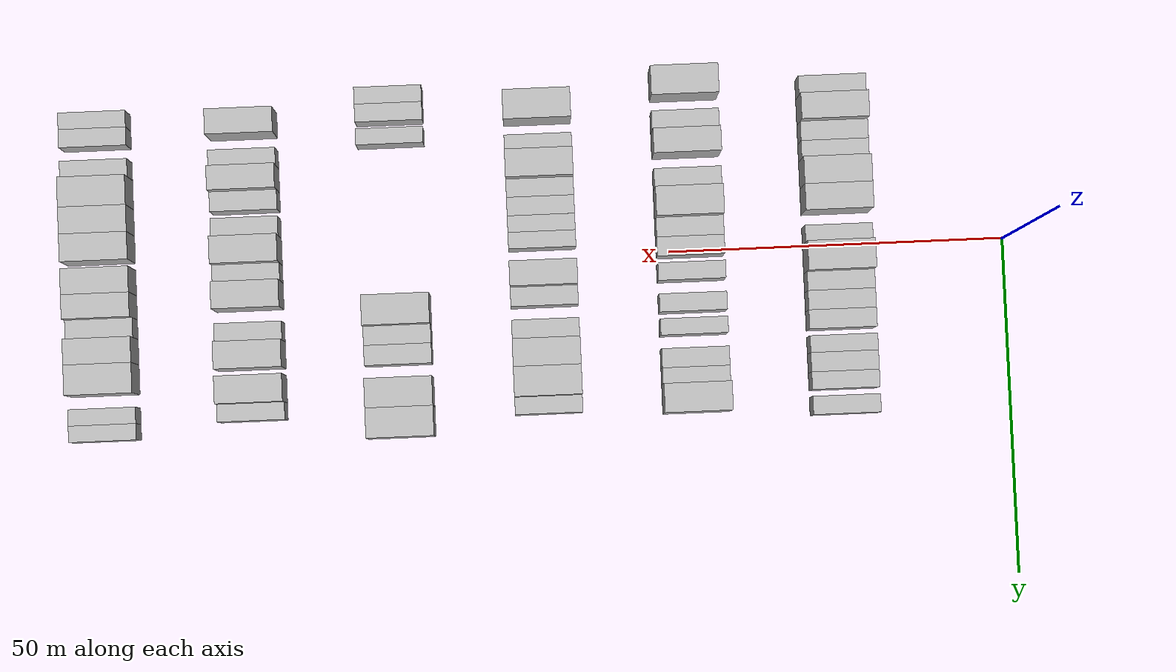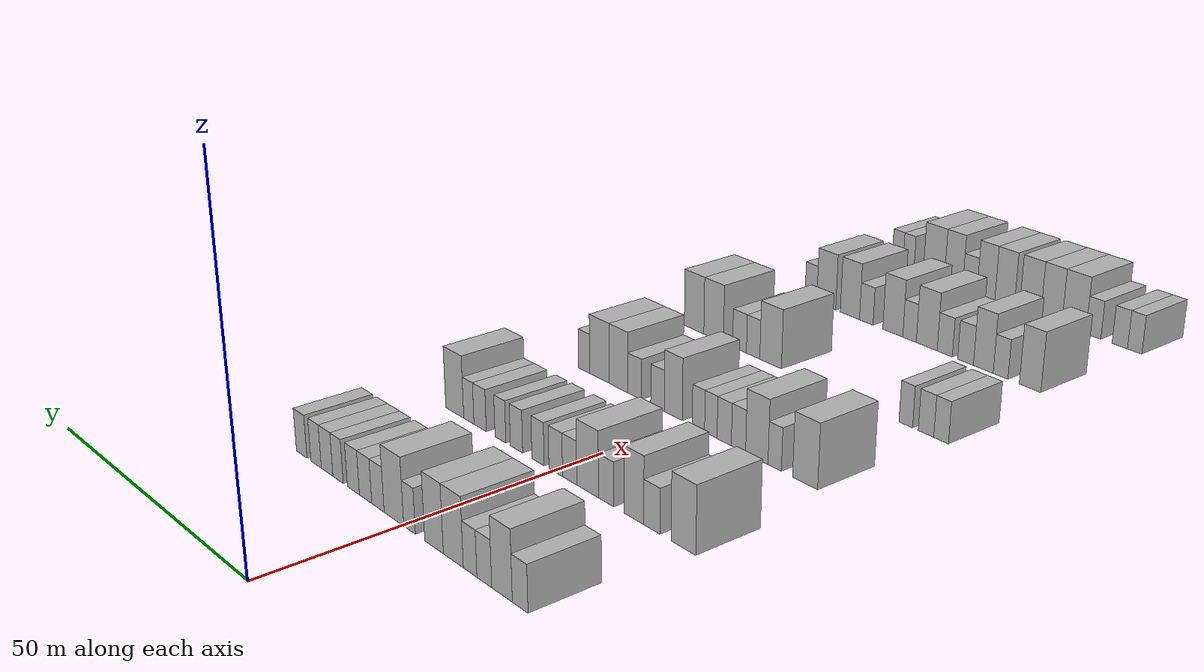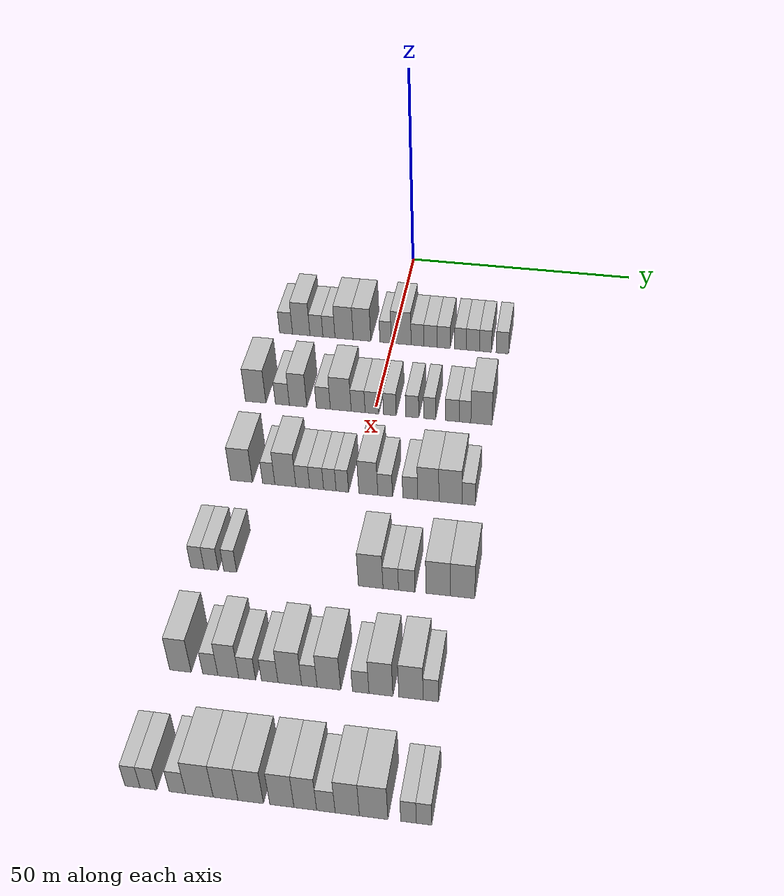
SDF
<sdf version="1.6">
 <world name="default">
  <model name="building_90">
   <static>1</static>
   <pose>25.0000 -23.5446 0 0.000000 0.000000 0.000000</pose>
   <link name="link">
    <pose>0 0 3.00 0 0 0</pose>
    <collision name="collision"><geometry><box><size>10.0000 2.8933 6.0000</size></box></geometry></collision>
    <visual name="visual">
     <cast_shadows>0</cast_shadows>
     <geometry><box><size>10.0000 2.8933 6.0000</size></box></geometry>
     <material>
      <script>
       <uri>model://HANNAS_wall/materials/scripts</uri>
       <uri>model://HANNAS_wall/materials/textures</uri>
       <name>vrc/HANNAS_wall</name>
      </script>
     </material>
    </visual>
   </link>
  </model>
  <model name="building_91">
   <static>1</static>
   <pose>25.0000 -20.1573 0 0.000000 0.000000 0.000000</pose>
   <link name="link">
    <pose>0 0 4.50 0 0 0</pose>
    <collision name="collision"><geometry><box><size>10.0000 3.8812 9.0000</size></box></geometry></collision>
    <visual name="visual">
     <cast_shadows>0</cast_shadows>
     <geometry><box><size>10.0000 3.8812 9.0000</size></box></geometry>
     <material>
      <script>
       <uri>model://HANNAS_wall/materials/scripts</uri>
       <uri>model://HANNAS_wall/materials/textures</uri>
       <name>vrc/HANNAS_wall</name>
      </script>
     </material>
    </visual>
   </link>
  </model>
  <model name="building_92">
   <static>1</static>
   <pose>25.0000 -16.7781 0 0.000000 0.000000 0.000000</pose>
   <link name="link">
    <pose>0 0 3.00 0 0 0</pose>
    <collision name="collision"><geometry><box><size>10.0000 2.8771 6.0000</size></box></geometry></collision>
    <visual name="visual">
     <cast_shadows>0</cast_shadows>
     <geometry><box><size>10.0000 2.8771 6.0000</size></box></geometry>
     <material>
      <script>
       <uri>model://HANNAS_wall/materials/scripts</uri>
       <uri>model://HANNAS_wall/materials/textures</uri>
       <name>vrc/HANNAS_wall</name>
      </script>
     </material>
    </visual>
   </link>
  </model>
  <model name="building_93">
   <static>1</static>
   <pose>25.0000 -13.9975 0 0.000000 0.000000 0.000000</pose>
   <link name="link">
    <pose>0 0 3.00 0 0 0</pose>
    <collision name="collision"><geometry><box><size>10.0000 2.6841 6.0000</size></box></geometry></collision>
    <visual name="visual">
     <cast_shadows>0</cast_shadows>
     <geometry><box><size>10.0000 2.6841 6.0000</size></box></geometry>
     <material>
      <script>
       <uri>model://HANNAS_wall/materials/scripts</uri>
       <uri>model://HANNAS_wall/materials/textures</uri>
       <name>vrc/HANNAS_wall</name>
      </script>
     </material>
    </visual>
   </link>
  </model>
  <model name="building_94">
   <static>1</static>
   <pose>25.0000 -10.6313 0 0.000000 0.000000 0.000000</pose>
   <link name="link">
    <pose>0 0 4.50 0 0 0</pose>
    <collision name="collision"><geometry><box><size>10.0000 4.0483 9.0000</size></box></geometry></collision>
    <visual name="visual">
     <cast_shadows>0</cast_shadows>
     <geometry><box><size>10.0000 4.0483 9.0000</size></box></geometry>
     <material>
      <script>
       <uri>model://HANNAS_wall/materials/scripts</uri>
       <uri>model://HANNAS_wall/materials/textures</uri>
       <name>vrc/HANNAS_wall</name>
      </script>
     </material>
    </visual>
   </link>
  </model>
  <model name="building_95">
   <static>1</static>
   <pose>25.0000 -6.6675 0 0.000000 0.000000 0.000000</pose>
   <link name="link">
    <pose>0 0 4.50 0 0 0</pose>
    <collision name="collision"><geometry><box><size>10.0000 3.8792 9.0000</size></box></geometry></collision>
    <visual name="visual">
     <cast_shadows>0</cast_shadows>
     <geometry><box><size>10.0000 3.8792 9.0000</size></box></geometry>
     <material>
      <script>
       <uri>model://HANNAS_wall/materials/scripts</uri>
       <uri>model://HANNAS_wall/materials/textures</uri>
       <name>vrc/HANNAS_wall</name>
      </script>
     </material>
    </visual>
   </link>
  </model>
  <model name="building_96">
   <static>1</static>
   <pose>25.0000 -1.4679 0 0.000000 0.000000 0.000000</pose>
   <link name="link">
    <pose>0 0 3.00 0 0 0</pose>
    <collision name="collision"><geometry><box><size>10.0000 2.5201 6.0000</size></box></geometry></collision>
    <visual name="visual">
     <cast_shadows>0</cast_shadows>
     <geometry><box><size>10.0000 2.5201 6.0000</size></box></geometry>
     <material>
      <script>
       <uri>model://HANNAS_wall/materials/scripts</uri>
       <uri>model://HANNAS_wall/materials/textures</uri>
       <name>vrc/HANNAS_wall</name>
      </script>
     </material>
    </visual>
   </link>
  </model>
  <model name="building_97">
   <static>1</static>
   <pose>25.0000 1.9667 0 0.000000 0.000000 0.000000</pose>
   <link name="link">
    <pose>0 0 4.50 0 0 0</pose>
    <collision name="collision"><geometry><box><size>10.0000 4.3492 9.0000</size></box></geometry></collision>
    <visual name="visual">
     <cast_shadows>0</cast_shadows>
     <geometry><box><size>10.0000 4.3492 9.0000</size></box></geometry>
     <material>
      <script>
       <uri>model://HANNAS_wall/materials/scripts</uri>
       <uri>model://HANNAS_wall/materials/textures</uri>
       <name>vrc/HANNAS_wall</name>
      </script>
     </material>
    </visual>
   </link>
  </model>
  <model name="building_98">
   <static>1</static>
   <pose>25.0000 5.5526 0 0.000000 0.000000 0.000000</pose>
   <link name="link">
    <pose>0 0 3.00 0 0 0</pose>
    <collision name="collision"><geometry><box><size>10.0000 2.8225 6.0000</size></box></geometry></collision>
    <visual name="visual">
     <cast_shadows>0</cast_shadows>
     <geometry><box><size>10.0000 2.8225 6.0000</size></box></geometry>
     <material>
      <script>
       <uri>model://HANNAS_wall/materials/scripts</uri>
       <uri>model://HANNAS_wall/materials/textures</uri>
       <name>vrc/HANNAS_wall</name>
      </script>
     </material>
    </visual>
   </link>
  </model>
  <model name="building_99">
   <static>1</static>
   <pose>25.0000 8.3953 0 0.000000 0.000000 0.000000</pose>
   <link name="link">
    <pose>0 0 3.00 0 0 0</pose>
    <collision name="collision"><geometry><box><size>10.0000 2.8630 6.0000</size></box></geometry></collision>
    <visual name="visual">
     <cast_shadows>0</cast_shadows>
     <geometry><box><size>10.0000 2.8630 6.0000</size></box></geometry>
     <material>
      <script>
       <uri>model://HANNAS_wall/materials/scripts</uri>
       <uri>model://HANNAS_wall/materials/textures</uri>
       <name>vrc/HANNAS_wall</name>
      </script>
     </material>
    </visual>
   </link>
  </model>
  <model name="building_100">
   <static>1</static>
   <pose>25.0000 11.2444 0 0.000000 0.000000 0.000000</pose>
   <link name="link">
    <pose>0 0 3.00 0 0 0</pose>
    <collision name="collision"><geometry><box><size>10.0000 2.8353 6.0000</size></box></geometry></collision>
    <visual name="visual">
     <cast_shadows>0</cast_shadows>
     <geometry><box><size>10.0000 2.8353 6.0000</size></box></geometry>
     <material>
      <script>
       <uri>model://HANNAS_wall/materials/scripts</uri>
       <uri>model://HANNAS_wall/materials/textures</uri>
       <name>vrc/HANNAS_wall</name>
      </script>
     </material>
    </visual>
   </link>
  </model>
  <model name="building_101">
   <static>1</static>
   <pose>25.0000 14.9084 0 0.000000 0.000000 0.000000</pose>
   <link name="link">
    <pose>0 0 3.00 0 0 0</pose>
    <collision name="collision"><geometry><box><size>10.0000 2.4927 6.0000</size></box></geometry></collision>
    <visual name="visual">
     <cast_shadows>0</cast_shadows>
     <geometry><box><size>10.0000 2.4927 6.0000</size></box></geometry>
     <material>
      <script>
       <uri>model://HANNAS_wall/materials/scripts</uri>
       <uri>model://HANNAS_wall/materials/textures</uri>
       <name>vrc/HANNAS_wall</name>
      </script>
     </material>
    </visual>
   </link>
  </model>
  <model name="building_102">
   <static>1</static>
   <pose>25.0000 17.5866 0 0.000000 0.000000 0.000000</pose>
   <link name="link">
    <pose>0 0 3.00 0 0 0</pose>
    <collision name="collision"><geometry><box><size>10.0000 2.8636 6.0000</size></box></geometry></collision>
    <visual name="visual">
     <cast_shadows>0</cast_shadows>
     <geometry><box><size>10.0000 2.8636 6.0000</size></box></geometry>
     <material>
      <script>
       <uri>model://HANNAS_wall/materials/scripts</uri>
       <uri>model://HANNAS_wall/materials/textures</uri>
       <name>vrc/HANNAS_wall</name>
      </script>
     </material>
    </visual>
   </link>
  </model>
  <model name="building_103">
   <static>1</static>
   <pose>25.0000 20.3215 0 0.000000 0.000000 0.000000</pose>
   <link name="link">
    <pose>0 0 3.00 0 0 0</pose>
    <collision name="collision"><geometry><box><size>10.0000 2.6062 6.0000</size></box></geometry></collision>
    <visual name="visual">
     <cast_shadows>0</cast_shadows>
     <geometry><box><size>10.0000 2.6062 6.0000</size></box></geometry>
     <material>
      <script>
       <uri>model://HANNAS_wall/materials/scripts</uri>
       <uri>model://HANNAS_wall/materials/textures</uri>
       <name>vrc/HANNAS_wall</name>
      </script>
     </material>
    </visual>
   </link>
  </model>
  <model name="building_104">
   <static>1</static>
   <pose>25.0000 23.9805 0 0.000000 0.000000 0.000000</pose>
   <link name="link">
    <pose>0 0 3.00 0 0 0</pose>
    <collision name="collision"><geometry><box><size>10.0000 2.7118 6.0000</size></box></geometry></collision>
    <visual name="visual">
     <cast_shadows>0</cast_shadows>
     <geometry><box><size>10.0000 2.7118 6.0000</size></box></geometry>
     <material>
      <script>
       <uri>model://HANNAS_wall/materials/scripts</uri>
       <uri>model://HANNAS_wall/materials/textures</uri>
       <name>vrc/HANNAS_wall</name>
      </script>
     </material>
    </visual>
   </link>
  </model>
  <model name="building_278">
   <static>1</static>
   <pose>47.0000 -24.8660 0 0.000000 0.000000 0.000000</pose>
   <link name="link">
    <pose>0 0 4.50 0 0 0</pose>
    <collision name="collision"><geometry><box><size>10.0000 4.3308 9.0000</size></box></geometry></collision>
    <visual name="visual">
     <cast_shadows>0</cast_shadows>
     <geometry><box><size>10.0000 4.3308 9.0000</size></box></geometry>
     <material>
      <script>
       <uri>model://HANNAS_wall/materials/scripts</uri>
       <uri>model://HANNAS_wall/materials/textures</uri>
       <name>vrc/HANNAS_wall</name>
      </script>
     </material>
    </visual>
   </link>
  </model>
  <model name="building_279">
   <static>1</static>
   <pose>47.0000 -19.2236 0 0.000000 0.000000 0.000000</pose>
   <link name="link">
    <pose>0 0 3.00 0 0 0</pose>
    <collision name="collision"><geometry><box><size>10.0000 2.9540 6.0000</size></box></geometry></collision>
    <visual name="visual">
     <cast_shadows>0</cast_shadows>
     <geometry><box><size>10.0000 2.9540 6.0000</size></box></geometry>
     <material>
      <script>
       <uri>model://HANNAS_wall/materials/scripts</uri>
       <uri>model://HANNAS_wall/materials/textures</uri>
       <name>vrc/HANNAS_wall</name>
      </script>
     </material>
    </visual>
   </link>
  </model>
  <model name="building_280">
   <static>1</static>
   <pose>47.0000 -15.9154 0 0.000000 0.000000 0.000000</pose>
   <link name="link">
    <pose>0 0 4.50 0 0 0</pose>
    <collision name="collision"><geometry><box><size>10.0000 3.6624 9.0000</size></box></geometry></collision>
    <visual name="visual">
     <cast_shadows>0</cast_shadows>
     <geometry><box><size>10.0000 3.6624 9.0000</size></box></geometry>
     <material>
      <script>
       <uri>model://HANNAS_wall/materials/scripts</uri>
       <uri>model://HANNAS_wall/materials/textures</uri>
       <name>vrc/HANNAS_wall</name>
      </script>
     </material>
    </visual>
   </link>
  </model>
  <model name="building_281">
   <static>1</static>
   <pose>47.0000 -10.6184 0 0.000000 0.000000 0.000000</pose>
   <link name="link">
    <pose>0 0 3.00 0 0 0</pose>
    <collision name="collision"><geometry><box><size>10.0000 2.9316 6.0000</size></box></geometry></collision>
    <visual name="visual">
     <cast_shadows>0</cast_shadows>
     <geometry><box><size>10.0000 2.9316 6.0000</size></box></geometry>
     <material>
      <script>
       <uri>model://HANNAS_wall/materials/scripts</uri>
       <uri>model://HANNAS_wall/materials/textures</uri>
       <name>vrc/HANNAS_wall</name>
      </script>
     </material>
    </visual>
   </link>
  </model>
  <model name="building_282">
   <static>1</static>
   <pose>47.0000 -6.9768 0 0.000000 0.000000 0.000000</pose>
   <link name="link">
    <pose>0 0 4.50 0 0 0</pose>
    <collision name="collision"><geometry><box><size>10.0000 4.3516 9.0000</size></box></geometry></collision>
    <visual name="visual">
     <cast_shadows>0</cast_shadows>
     <geometry><box><size>10.0000 4.3516 9.0000</size></box></geometry>
     <material>
      <script>
       <uri>model://HANNAS_wall/materials/scripts</uri>
       <uri>model://HANNAS_wall/materials/textures</uri>
       <name>vrc/HANNAS_wall</name>
      </script>
     </material>
    </visual>
   </link>
  </model>
  <model name="building_283">
   <static>1</static>
   <pose>47.0000 -3.3523 0 0.000000 0.000000 0.000000</pose>
   <link name="link">
    <pose>0 0 3.00 0 0 0</pose>
    <collision name="collision"><geometry><box><size>10.0000 2.8975 6.0000</size></box></geometry></collision>
    <visual name="visual">
     <cast_shadows>0</cast_shadows>
     <geometry><box><size>10.0000 2.8975 6.0000</size></box></geometry>
     <material>
      <script>
       <uri>model://HANNAS_wall/materials/scripts</uri>
       <uri>model://HANNAS_wall/materials/textures</uri>
       <name>vrc/HANNAS_wall</name>
      </script>
     </material>
    </visual>
   </link>
  </model>
  <model name="building_284">
   <static>1</static>
   <pose>47.0000 -0.4868 0 0.000000 0.000000 0.000000</pose>
   <link name="link">
    <pose>0 0 3.00 0 0 0</pose>
    <collision name="collision"><geometry><box><size>10.0000 2.8335 6.0000</size></box></geometry></collision>
    <visual name="visual">
     <cast_shadows>0</cast_shadows>
     <geometry><box><size>10.0000 2.8335 6.0000</size></box></geometry>
     <material>
      <script>
       <uri>model://HANNAS_wall/materials/scripts</uri>
       <uri>model://HANNAS_wall/materials/textures</uri>
       <name>vrc/HANNAS_wall</name>
      </script>
     </material>
    </visual>
   </link>
  </model>
  <model name="building_285">
   <static>1</static>
   <pose>47.0000 3.2384 0 0.000000 0.000000 0.000000</pose>
   <link name="link">
    <pose>0 0 3.00 0 0 0</pose>
    <collision name="collision"><geometry><box><size>10.0000 2.6170 6.0000</size></box></geometry></collision>
    <visual name="visual">
     <cast_shadows>0</cast_shadows>
     <geometry><box><size>10.0000 2.6170 6.0000</size></box></geometry>
     <material>
      <script>
       <uri>model://HANNAS_wall/materials/scripts</uri>
       <uri>model://HANNAS_wall/materials/textures</uri>
       <name>vrc/HANNAS_wall</name>
      </script>
     </material>
    </visual>
   </link>
  </model>
  <model name="building_286">
   <static>1</static>
   <pose>47.0000 7.8902 0 0.000000 0.000000 0.000000</pose>
   <link name="link">
    <pose>0 0 3.00 0 0 0</pose>
    <collision name="collision"><geometry><box><size>10.0000 2.6865 6.0000</size></box></geometry></collision>
    <visual name="visual">
     <cast_shadows>0</cast_shadows>
     <geometry><box><size>10.0000 2.6865 6.0000</size></box></geometry>
     <material>
      <script>
       <uri>model://HANNAS_wall/materials/scripts</uri>
       <uri>model://HANNAS_wall/materials/textures</uri>
       <name>vrc/HANNAS_wall</name>
      </script>
     </material>
    </visual>
   </link>
  </model>
  <model name="building_287">
   <static>1</static>
   <pose>47.0000 11.4489 0 0.000000 0.000000 0.000000</pose>
   <link name="link">
    <pose>0 0 3.00 0 0 0</pose>
    <collision name="collision"><geometry><box><size>10.0000 2.4309 6.0000</size></box></geometry></collision>
    <visual name="visual">
     <cast_shadows>0</cast_shadows>
     <geometry><box><size>10.0000 2.4309 6.0000</size></box></geometry>
     <material>
      <script>
       <uri>model://HANNAS_wall/materials/scripts</uri>
       <uri>model://HANNAS_wall/materials/textures</uri>
       <name>vrc/HANNAS_wall</name>
      </script>
     </material>
    </visual>
   </link>
  </model>
  <model name="building_288">
   <static>1</static>
   <pose>47.0000 16.0870 0 0.000000 0.000000 0.000000</pose>
   <link name="link">
    <pose>0 0 3.00 0 0 0</pose>
    <collision name="collision"><geometry><box><size>10.0000 2.8452 6.0000</size></box></geometry></collision>
    <visual name="visual">
     <cast_shadows>0</cast_shadows>
     <geometry><box><size>10.0000 2.8452 6.0000</size></box></geometry>
     <material>
      <script>
       <uri>model://HANNAS_wall/materials/scripts</uri>
       <uri>model://HANNAS_wall/materials/textures</uri>
       <name>vrc/HANNAS_wall</name>
      </script>
     </material>
    </visual>
   </link>
  </model>
  <model name="building_289">
   <static>1</static>
   <pose>47.0000 18.7150 0 0.000000 0.000000 0.000000</pose>
   <link name="link">
    <pose>0 0 3.00 0 0 0</pose>
    <collision name="collision"><geometry><box><size>10.0000 2.4107 6.0000</size></box></geometry></collision>
    <visual name="visual">
     <cast_shadows>0</cast_shadows>
     <geometry><box><size>10.0000 2.4107 6.0000</size></box></geometry>
     <material>
      <script>
       <uri>model://HANNAS_wall/materials/scripts</uri>
       <uri>model://HANNAS_wall/materials/textures</uri>
       <name>vrc/HANNAS_wall</name>
      </script>
     </material>
    </visual>
   </link>
  </model>
  <model name="building_290">
   <static>1</static>
   <pose>47.0000 22.0694 0 0.000000 0.000000 0.000000</pose>
   <link name="link">
    <pose>0 0 4.50 0 0 0</pose>
    <collision name="collision"><geometry><box><size>10.0000 4.2982 9.0000</size></box></geometry></collision>
    <visual name="visual">
     <cast_shadows>0</cast_shadows>
     <geometry><box><size>10.0000 4.2982 9.0000</size></box></geometry>
     <material>
      <script>
       <uri>model://HANNAS_wall/materials/scripts</uri>
       <uri>model://HANNAS_wall/materials/textures</uri>
       <name>vrc/HANNAS_wall</name>
      </script>
     </material>
    </visual>
   </link>
  </model>
  <model name="building_460">
   <static>1</static>
   <pose>69.0000 -22.1935 0 0.000000 0.000000 0.000000</pose>
   <link name="link">
    <pose>0 0 4.50 0 0 0</pose>
    <collision name="collision"><geometry><box><size>10.0000 4.3882 9.0000</size></box></geometry></collision>
    <visual name="visual">
     <cast_shadows>0</cast_shadows>
     <geometry><box><size>10.0000 4.3882 9.0000</size></box></geometry>
     <material>
      <script>
       <uri>model://HANNAS_wall/materials/scripts</uri>
       <uri>model://HANNAS_wall/materials/textures</uri>
       <name>vrc/HANNAS_wall</name>
      </script>
     </material>
    </visual>
   </link>
  </model>
  <model name="building_461">
   <static>1</static>
   <pose>69.0000 -16.7831 0 0.000000 0.000000 0.000000</pose>
   <link name="link">
    <pose>0 0 3.00 0 0 0</pose>
    <collision name="collision"><geometry><box><size>10.0000 2.4325 6.0000</size></box></geometry></collision>
    <visual name="visual">
     <cast_shadows>0</cast_shadows>
     <geometry><box><size>10.0000 2.4325 6.0000</size></box></geometry>
     <material>
      <script>
       <uri>model://HANNAS_wall/materials/scripts</uri>
       <uri>model://HANNAS_wall/materials/textures</uri>
       <name>vrc/HANNAS_wall</name>
      </script>
     </material>
    </visual>
   </link>
  </model>
  <model name="building_462">
   <static>1</static>
   <pose>69.0000 -13.4938 0 0.000000 0.000000 0.000000</pose>
   <link name="link">
    <pose>0 0 4.50 0 0 0</pose>
    <collision name="collision"><geometry><box><size>10.0000 4.1462 9.0000</size></box></geometry></collision>
    <visual name="visual">
     <cast_shadows>0</cast_shadows>
     <geometry><box><size>10.0000 4.1462 9.0000</size></box></geometry>
     <material>
      <script>
       <uri>model://HANNAS_wall/materials/scripts</uri>
       <uri>model://HANNAS_wall/materials/textures</uri>
       <name>vrc/HANNAS_wall</name>
      </script>
     </material>
    </visual>
   </link>
  </model>
  <model name="building_463">
   <static>1</static>
   <pose>69.0000 -10.0614 0 0.000000 0.000000 0.000000</pose>
   <link name="link">
    <pose>0 0 3.00 0 0 0</pose>
    <collision name="collision"><geometry><box><size>10.0000 2.7187 6.0000</size></box></geometry></collision>
    <visual name="visual">
     <cast_shadows>0</cast_shadows>
     <geometry><box><size>10.0000 2.7187 6.0000</size></box></geometry>
     <material>
      <script>
       <uri>model://HANNAS_wall/materials/scripts</uri>
       <uri>model://HANNAS_wall/materials/textures</uri>
       <name>vrc/HANNAS_wall</name>
      </script>
     </material>
    </visual>
   </link>
  </model>
  <model name="building_464">
   <static>1</static>
   <pose>69.0000 -7.3250 0 0.000000 0.000000 0.000000</pose>
   <link name="link">
    <pose>0 0 3.00 0 0 0</pose>
    <collision name="collision"><geometry><box><size>10.0000 2.7540 6.0000</size></box></geometry></collision>
    <visual name="visual">
     <cast_shadows>0</cast_shadows>
     <geometry><box><size>10.0000 2.7540 6.0000</size></box></geometry>
     <material>
      <script>
       <uri>model://HANNAS_wall/materials/scripts</uri>
       <uri>model://HANNAS_wall/materials/textures</uri>
       <name>vrc/HANNAS_wall</name>
      </script>
     </material>
    </visual>
   </link>
  </model>
  <model name="building_465">
   <static>1</static>
   <pose>69.0000 -4.7205 0 0.000000 0.000000 0.000000</pose>
   <link name="link">
    <pose>0 0 3.00 0 0 0</pose>
    <collision name="collision"><geometry><box><size>10.0000 2.4548 6.0000</size></box></geometry></collision>
    <visual name="visual">
     <cast_shadows>0</cast_shadows>
     <geometry><box><size>10.0000 2.4548 6.0000</size></box></geometry>
     <material>
      <script>
       <uri>model://HANNAS_wall/materials/scripts</uri>
       <uri>model://HANNAS_wall/materials/textures</uri>
       <name>vrc/HANNAS_wall</name>
      </script>
     </material>
    </visual>
   </link>
  </model>
  <model name="building_466">
   <static>1</static>
   <pose>69.0000 -2.2647 0 0.000000 0.000000 0.000000</pose>
   <link name="link">
    <pose>0 0 3.00 0 0 0</pose>
    <collision name="collision"><geometry><box><size>10.0000 2.4569 6.0000</size></box></geometry></collision>
    <visual name="visual">
     <cast_shadows>0</cast_shadows>
     <geometry><box><size>10.0000 2.4569 6.0000</size></box></geometry>
     <material>
      <script>
       <uri>model://HANNAS_wall/materials/scripts</uri>
       <uri>model://HANNAS_wall/materials/textures</uri>
       <name>vrc/HANNAS_wall</name>
      </script>
     </material>
    </visual>
   </link>
  </model>
  <model name="building_467">
   <static>1</static>
   <pose>69.0000 2.8188 0 0.000000 0.000000 0.000000</pose>
   <link name="link">
    <pose>0 0 4.50 0 0 0</pose>
    <collision name="collision"><geometry><box><size>10.0000 3.7100 9.0000</size></box></geometry></collision>
    <visual name="visual">
     <cast_shadows>0</cast_shadows>
     <geometry><box><size>10.0000 3.7100 9.0000</size></box></geometry>
     <material>
      <script>
       <uri>model://HANNAS_wall/materials/scripts</uri>
       <uri>model://HANNAS_wall/materials/textures</uri>
       <name>vrc/HANNAS_wall</name>
      </script>
     </material>
    </visual>
   </link>
  </model>
  <model name="building_468">
   <static>1</static>
   <pose>69.0000 6.0997 0 0.000000 0.000000 0.000000</pose>
   <link name="link">
    <pose>0 0 3.00 0 0 0</pose>
    <collision name="collision"><geometry><box><size>10.0000 2.8517 6.0000</size></box></geometry></collision>
    <visual name="visual">
     <cast_shadows>0</cast_shadows>
     <geometry><box><size>10.0000 2.8517 6.0000</size></box></geometry>
     <material>
      <script>
       <uri>model://HANNAS_wall/materials/scripts</uri>
       <uri>model://HANNAS_wall/materials/textures</uri>
       <name>vrc/HANNAS_wall</name>
      </script>
     </material>
    </visual>
   </link>
  </model>
  <model name="building_469">
   <static>1</static>
   <pose>69.0000 10.9726 0 0.000000 0.000000 0.000000</pose>
   <link name="link">
    <pose>0 0 3.00 0 0 0</pose>
    <collision name="collision"><geometry><box><size>10.0000 2.8942 6.0000</size></box></geometry></collision>
    <visual name="visual">
     <cast_shadows>0</cast_shadows>
     <geometry><box><size>10.0000 2.8942 6.0000</size></box></geometry>
     <material>
      <script>
       <uri>model://HANNAS_wall/materials/scripts</uri>
       <uri>model://HANNAS_wall/materials/textures</uri>
       <name>vrc/HANNAS_wall</name>
      </script>
     </material>
    </visual>
   </link>
  </model>
  <model name="building_470">
   <static>1</static>
   <pose>69.0000 14.4703 0 0.000000 0.000000 0.000000</pose>
   <link name="link">
    <pose>0 0 4.50 0 0 0</pose>
    <collision name="collision"><geometry><box><size>10.0000 4.1012 9.0000</size></box></geometry></collision>
    <visual name="visual">
     <cast_shadows>0</cast_shadows>
     <geometry><box><size>10.0000 4.1012 9.0000</size></box></geometry>
     <material>
      <script>
       <uri>model://HANNAS_wall/materials/scripts</uri>
       <uri>model://HANNAS_wall/materials/textures</uri>
       <name>vrc/HANNAS_wall</name>
      </script>
     </material>
    </visual>
   </link>
  </model>
  <model name="building_471">
   <static>1</static>
   <pose>69.0000 18.7322 0 0.000000 0.000000 0.000000</pose>
   <link name="link">
    <pose>0 0 4.50 0 0 0</pose>
    <collision name="collision"><geometry><box><size>10.0000 4.4226 9.0000</size></box></geometry></collision>
    <visual name="visual">
     <cast_shadows>0</cast_shadows>
     <geometry><box><size>10.0000 4.4226 9.0000</size></box></geometry>
     <material>
      <script>
       <uri>model://HANNAS_wall/materials/scripts</uri>
       <uri>model://HANNAS_wall/materials/textures</uri>
       <name>vrc/HANNAS_wall</name>
      </script>
     </material>
    </visual>
   </link>
  </model>
  <model name="building_472">
   <static>1</static>
   <pose>69.0000 22.2310 0 0.000000 0.000000 0.000000</pose>
   <link name="link">
    <pose>0 0 3.00 0 0 0</pose>
    <collision name="collision"><geometry><box><size>10.0000 2.5750 6.0000</size></box></geometry></collision>
    <visual name="visual">
     <cast_shadows>0</cast_shadows>
     <geometry><box><size>10.0000 2.5750 6.0000</size></box></geometry>
     <material>
      <script>
       <uri>model://HANNAS_wall/materials/scripts</uri>
       <uri>model://HANNAS_wall/materials/textures</uri>
       <name>vrc/HANNAS_wall</name>
      </script>
     </material>
    </visual>
   </link>
  </model>
  <model name="building_650">
   <static>1</static>
   <pose>91.0000 -24.7617 0 0.000000 0.000000 0.000000</pose>
   <link name="link">
    <pose>0 0 3.00 0 0 0</pose>
    <collision name="collision"><geometry><box><size>10.0000 2.5001 6.0000</size></box></geometry></collision>
    <visual name="visual">
     <cast_shadows>0</cast_shadows>
     <geometry><box><size>10.0000 2.5001 6.0000</size></box></geometry>
     <material>
      <script>
       <uri>model://HANNAS_wall/materials/scripts</uri>
       <uri>model://HANNAS_wall/materials/textures</uri>
       <name>vrc/HANNAS_wall</name>
      </script>
     </material>
    </visual>
   </link>
  </model>
  <model name="building_651">
   <static>1</static>
   <pose>91.0000 -22.1713 0 0.000000 0.000000 0.000000</pose>
   <link name="link">
    <pose>0 0 3.00 0 0 0</pose>
    <collision name="collision"><geometry><box><size>10.0000 2.6807 6.0000</size></box></geometry></collision>
    <visual name="visual">
     <cast_shadows>0</cast_shadows>
     <geometry><box><size>10.0000 2.6807 6.0000</size></box></geometry>
     <material>
      <script>
       <uri>model://HANNAS_wall/materials/scripts</uri>
       <uri>model://HANNAS_wall/materials/textures</uri>
       <name>vrc/HANNAS_wall</name>
      </script>
     </material>
    </visual>
   </link>
  </model>
  <model name="building_652">
   <static>1</static>
   <pose>91.0000 -18.6272 0 0.000000 0.000000 0.000000</pose>
   <link name="link">
    <pose>0 0 3.00 0 0 0</pose>
    <collision name="collision"><geometry><box><size>10.0000 2.4075 6.0000</size></box></geometry></collision>
    <visual name="visual">
     <cast_shadows>0</cast_shadows>
     <geometry><box><size>10.0000 2.4075 6.0000</size></box></geometry>
     <material>
      <script>
       <uri>model://HANNAS_wall/materials/scripts</uri>
       <uri>model://HANNAS_wall/materials/textures</uri>
       <name>vrc/HANNAS_wall</name>
      </script>
     </material>
    </visual>
   </link>
  </model>
  <model name="building_653">
   <static>1</static>
   <pose>91.0000 7.3039 0 0.000000 0.000000 0.000000</pose>
   <link name="link">
    <pose>0 0 4.50 0 0 0</pose>
    <collision name="collision"><geometry><box><size>10.0000 4.4849 9.0000</size></box></geometry></collision>
    <visual name="visual">
     <cast_shadows>0</cast_shadows>
     <geometry><box><size>10.0000 4.4849 9.0000</size></box></geometry>
     <material>
      <script>
       <uri>model://HANNAS_wall/materials/scripts</uri>
       <uri>model://HANNAS_wall/materials/textures</uri>
       <name>vrc/HANNAS_wall</name>
      </script>
     </material>
    </visual>
   </link>
  </model>
  <model name="building_654">
   <static>1</static>
   <pose>91.0000 10.9560 0 0.000000 0.000000 0.000000</pose>
   <link name="link">
    <pose>0 0 3.00 0 0 0</pose>
    <collision name="collision"><geometry><box><size>10.0000 2.8194 6.0000</size></box></geometry></collision>
    <visual name="visual">
     <cast_shadows>0</cast_shadows>
     <geometry><box><size>10.0000 2.8194 6.0000</size></box></geometry>
     <material>
      <script>
       <uri>model://HANNAS_wall/materials/scripts</uri>
       <uri>model://HANNAS_wall/materials/textures</uri>
       <name>vrc/HANNAS_wall</name>
      </script>
     </material>
    </visual>
   </link>
  </model>
  <model name="building_655">
   <static>1</static>
   <pose>91.0000 13.8556 0 0.000000 0.000000 0.000000</pose>
   <link name="link">
    <pose>0 0 3.00 0 0 0</pose>
    <collision name="collision"><geometry><box><size>10.0000 2.9799 6.0000</size></box></geometry></collision>
    <visual name="visual">
     <cast_shadows>0</cast_shadows>
     <geometry><box><size>10.0000 2.9799 6.0000</size></box></geometry>
     <material>
      <script>
       <uri>model://HANNAS_wall/materials/scripts</uri>
       <uri>model://HANNAS_wall/materials/textures</uri>
       <name>vrc/HANNAS_wall</name>
      </script>
     </material>
    </visual>
   </link>
  </model>
  <model name="building_656">
   <static>1</static>
   <pose>91.0000 19.5198 0 0.000000 0.000000 0.000000</pose>
   <link name="link">
    <pose>0 0 4.50 0 0 0</pose>
    <collision name="collision"><geometry><box><size>10.0000 4.3485 9.0000</size></box></geometry></collision>
    <visual name="visual">
     <cast_shadows>0</cast_shadows>
     <geometry><box><size>10.0000 4.3485 9.0000</size></box></geometry>
     <material>
      <script>
       <uri>model://HANNAS_wall/materials/scripts</uri>
       <uri>model://HANNAS_wall/materials/textures</uri>
       <name>vrc/HANNAS_wall</name>
      </script>
     </material>
    </visual>
   </link>
  </model>
  <model name="building_657">
   <static>1</static>
   <pose>91.0000 23.9176 0 0.000000 0.000000 0.000000</pose>
   <link name="link">
    <pose>0 0 4.50 0 0 0</pose>
    <collision name="collision"><geometry><box><size>10.0000 4.4471 9.0000</size></box></geometry></collision>
    <visual name="visual">
     <cast_shadows>0</cast_shadows>
     <geometry><box><size>10.0000 4.4471 9.0000</size></box></geometry>
     <material>
      <script>
       <uri>model://HANNAS_wall/materials/scripts</uri>
       <uri>model://HANNAS_wall/materials/textures</uri>
       <name>vrc/HANNAS_wall</name>
      </script>
     </material>
    </visual>
   </link>
  </model>
  <model name="building_836">
   <static>1</static>
   <pose>113.0000 -21.4664 0 0.000000 0.000000 0.000000</pose>
   <link name="link">
    <pose>0 0 4.50 0 0 0</pose>
    <collision name="collision"><geometry><box><size>10.0000 3.7477 9.0000</size></box></geometry></collision>
    <visual name="visual">
     <cast_shadows>0</cast_shadows>
     <geometry><box><size>10.0000 3.7477 9.0000</size></box></geometry>
     <material>
      <script>
       <uri>model://HANNAS_wall/materials/scripts</uri>
       <uri>model://HANNAS_wall/materials/textures</uri>
       <name>vrc/HANNAS_wall</name>
      </script>
     </material>
    </visual>
   </link>
  </model>
  <model name="building_837">
   <static>1</static>
   <pose>113.0000 -16.2713 0 0.000000 0.000000 0.000000</pose>
   <link name="link">
    <pose>0 0 3.00 0 0 0</pose>
    <collision name="collision"><geometry><box><size>10.0000 2.6425 6.0000</size></box></geometry></collision>
    <visual name="visual">
     <cast_shadows>0</cast_shadows>
     <geometry><box><size>10.0000 2.6425 6.0000</size></box></geometry>
     <material>
      <script>
       <uri>model://HANNAS_wall/materials/scripts</uri>
       <uri>model://HANNAS_wall/materials/textures</uri>
       <name>vrc/HANNAS_wall</name>
      </script>
     </material>
    </visual>
   </link>
  </model>
  <model name="building_838">
   <static>1</static>
   <pose>113.0000 -13.1436 0 0.000000 0.000000 0.000000</pose>
   <link name="link">
    <pose>0 0 4.50 0 0 0</pose>
    <collision name="collision"><geometry><box><size>10.0000 3.6130 9.0000</size></box></geometry></collision>
    <visual name="visual">
     <cast_shadows>0</cast_shadows>
     <geometry><box><size>10.0000 3.6130 9.0000</size></box></geometry>
     <material>
      <script>
       <uri>model://HANNAS_wall/materials/scripts</uri>
       <uri>model://HANNAS_wall/materials/textures</uri>
       <name>vrc/HANNAS_wall</name>
      </script>
     </material>
    </visual>
   </link>
  </model>
  <model name="building_839">
   <static>1</static>
   <pose>113.0000 -9.8692 0 0.000000 0.000000 0.000000</pose>
   <link name="link">
    <pose>0 0 3.00 0 0 0</pose>
    <collision name="collision"><geometry><box><size>10.0000 2.9358 6.0000</size></box></geometry></collision>
    <visual name="visual">
     <cast_shadows>0</cast_shadows>
     <geometry><box><size>10.0000 2.9358 6.0000</size></box></geometry>
     <material>
      <script>
       <uri>model://HANNAS_wall/materials/scripts</uri>
       <uri>model://HANNAS_wall/materials/textures</uri>
       <name>vrc/HANNAS_wall</name>
      </script>
     </material>
    </visual>
   </link>
  </model>
  <model name="building_840">
   <static>1</static>
   <pose>113.0000 -5.9664 0 0.000000 0.000000 0.000000</pose>
   <link name="link">
    <pose>0 0 3.00 0 0 0</pose>
    <collision name="collision"><geometry><box><size>10.0000 2.8697 6.0000</size></box></geometry></collision>
    <visual name="visual">
     <cast_shadows>0</cast_shadows>
     <geometry><box><size>10.0000 2.8697 6.0000</size></box></geometry>
     <material>
      <script>
       <uri>model://HANNAS_wall/materials/scripts</uri>
       <uri>model://HANNAS_wall/materials/textures</uri>
       <name>vrc/HANNAS_wall</name>
      </script>
     </material>
    </visual>
   </link>
  </model>
  <model name="building_841">
   <static>1</static>
   <pose>113.0000 -2.5045 0 0.000000 0.000000 0.000000</pose>
   <link name="link">
    <pose>0 0 4.50 0 0 0</pose>
    <collision name="collision"><geometry><box><size>10.0000 4.0541 9.0000</size></box></geometry></collision>
    <visual name="visual">
     <cast_shadows>0</cast_shadows>
     <geometry><box><size>10.0000 4.0541 9.0000</size></box></geometry>
     <material>
      <script>
       <uri>model://HANNAS_wall/materials/scripts</uri>
       <uri>model://HANNAS_wall/materials/textures</uri>
       <name>vrc/HANNAS_wall</name>
      </script>
     </material>
    </visual>
   </link>
  </model>
  <model name="building_842">
   <static>1</static>
   <pose>113.0000 0.8556 0 0.000000 0.000000 0.000000</pose>
   <link name="link">
    <pose>0 0 3.00 0 0 0</pose>
    <collision name="collision"><geometry><box><size>10.0000 2.6663 6.0000</size></box></geometry></collision>
    <visual name="visual">
     <cast_shadows>0</cast_shadows>
     <geometry><box><size>10.0000 2.6663 6.0000</size></box></geometry>
     <material>
      <script>
       <uri>model://HANNAS_wall/materials/scripts</uri>
       <uri>model://HANNAS_wall/materials/textures</uri>
       <name>vrc/HANNAS_wall</name>
      </script>
     </material>
    </visual>
   </link>
  </model>
  <model name="building_843">
   <static>1</static>
   <pose>113.0000 4.2012 0 0.000000 0.000000 0.000000</pose>
   <link name="link">
    <pose>0 0 4.50 0 0 0</pose>
    <collision name="collision"><geometry><box><size>10.0000 4.0248 9.0000</size></box></geometry></collision>
    <visual name="visual">
     <cast_shadows>0</cast_shadows>
     <geometry><box><size>10.0000 4.0248 9.0000</size></box></geometry>
     <material>
      <script>
       <uri>model://HANNAS_wall/materials/scripts</uri>
       <uri>model://HANNAS_wall/materials/textures</uri>
       <name>vrc/HANNAS_wall</name>
      </script>
     </material>
    </visual>
   </link>
  </model>
  <model name="building_844">
   <static>1</static>
   <pose>113.0000 9.6167 0 0.000000 0.000000 0.000000</pose>
   <link name="link">
    <pose>0 0 3.00 0 0 0</pose>
    <collision name="collision"><geometry><box><size>10.0000 2.8062 6.0000</size></box></geometry></collision>
    <visual name="visual">
     <cast_shadows>0</cast_shadows>
     <geometry><box><size>10.0000 2.8062 6.0000</size></box></geometry>
     <material>
      <script>
       <uri>model://HANNAS_wall/materials/scripts</uri>
       <uri>model://HANNAS_wall/materials/textures</uri>
       <name>vrc/HANNAS_wall</name>
      </script>
     </material>
    </visual>
   </link>
  </model>
  <model name="building_845">
   <static>1</static>
   <pose>113.0000 13.0514 0 0.000000 0.000000 0.000000</pose>
   <link name="link">
    <pose>0 0 4.50 0 0 0</pose>
    <collision name="collision"><geometry><box><size>10.0000 4.0631 9.0000</size></box></geometry></collision>
    <visual name="visual">
     <cast_shadows>0</cast_shadows>
     <geometry><box><size>10.0000 4.0631 9.0000</size></box></geometry>
     <material>
      <script>
       <uri>model://HANNAS_wall/materials/scripts</uri>
       <uri>model://HANNAS_wall/materials/textures</uri>
       <name>vrc/HANNAS_wall</name>
      </script>
     </material>
    </visual>
   </link>
  </model>
  <model name="building_846">
   <static>1</static>
   <pose>113.0000 18.1331 0 0.000000 0.000000 0.000000</pose>
   <link name="link">
    <pose>0 0 4.50 0 0 0</pose>
    <collision name="collision"><geometry><box><size>10.0000 4.1003 9.0000</size></box></geometry></collision>
    <visual name="visual">
     <cast_shadows>0</cast_shadows>
     <geometry><box><size>10.0000 4.1003 9.0000</size></box></geometry>
     <material>
      <script>
       <uri>model://HANNAS_wall/materials/scripts</uri>
       <uri>model://HANNAS_wall/materials/textures</uri>
       <name>vrc/HANNAS_wall</name>
      </script>
     </material>
    </visual>
   </link>
  </model>
  <model name="building_847">
   <static>1</static>
   <pose>113.0000 21.4823 0 0.000000 0.000000 0.000000</pose>
   <link name="link">
    <pose>0 0 3.00 0 0 0</pose>
    <collision name="collision"><geometry><box><size>10.0000 2.5981 6.0000</size></box></geometry></collision>
    <visual name="visual">
     <cast_shadows>0</cast_shadows>
     <geometry><box><size>10.0000 2.5981 6.0000</size></box></geometry>
     <material>
      <script>
       <uri>model://HANNAS_wall/materials/scripts</uri>
       <uri>model://HANNAS_wall/materials/textures</uri>
       <name>vrc/HANNAS_wall</name>
      </script>
     </material>
    </visual>
   </link>
  </model>
  <model name="building_1012">
   <static>1</static>
   <pose>135.0000 -22.7860 0 0.000000 0.000000 0.000000</pose>
   <link name="link">
    <pose>0 0 3.00 0 0 0</pose>
    <collision name="collision"><geometry><box><size>10.0000 2.4742 6.0000</size></box></geometry></collision>
    <visual name="visual">
     <cast_shadows>0</cast_shadows>
     <geometry><box><size>10.0000 2.4742 6.0000</size></box></geometry>
     <material>
      <script>
       <uri>model://HANNAS_wall/materials/scripts</uri>
       <uri>model://HANNAS_wall/materials/textures</uri>
       <name>vrc/HANNAS_wall</name>
      </script>
     </material>
    </visual>
   </link>
  </model>
  <model name="building_1013">
   <static>1</static>
   <pose>135.0000 -20.1938 0 0.000000 0.000000 0.000000</pose>
   <link name="link">
    <pose>0 0 3.00 0 0 0</pose>
    <collision name="collision"><geometry><box><size>10.0000 2.7102 6.0000</size></box></geometry></collision>
    <visual name="visual">
     <cast_shadows>0</cast_shadows>
     <geometry><box><size>10.0000 2.7102 6.0000</size></box></geometry>
     <material>
      <script>
       <uri>model://HANNAS_wall/materials/scripts</uri>
       <uri>model://HANNAS_wall/materials/textures</uri>
       <name>vrc/HANNAS_wall</name>
      </script>
     </material>
    </visual>
   </link>
  </model>
  <model name="building_1014">
   <static>1</static>
   <pose>135.0000 -15.4945 0 0.000000 0.000000 0.000000</pose>
   <link name="link">
    <pose>0 0 3.00 0 0 0</pose>
    <collision name="collision"><geometry><box><size>10.0000 2.6884 6.0000</size></box></geometry></collision>
    <visual name="visual">
     <cast_shadows>0</cast_shadows>
     <geometry><box><size>10.0000 2.6884 6.0000</size></box></geometry>
     <material>
      <script>
       <uri>model://HANNAS_wall/materials/scripts</uri>
       <uri>model://HANNAS_wall/materials/textures</uri>
       <name>vrc/HANNAS_wall</name>
      </script>
     </material>
    </visual>
   </link>
  </model>
  <model name="building_1015">
   <static>1</static>
   <pose>135.0000 -11.9331 0 0.000000 0.000000 0.000000</pose>
   <link name="link">
    <pose>0 0 4.50 0 0 0</pose>
    <collision name="collision"><geometry><box><size>10.0000 4.4343 9.0000</size></box></geometry></collision>
    <visual name="visual">
     <cast_shadows>0</cast_shadows>
     <geometry><box><size>10.0000 4.4343 9.0000</size></box></geometry>
     <material>
      <script>
       <uri>model://HANNAS_wall/materials/scripts</uri>
       <uri>model://HANNAS_wall/materials/textures</uri>
       <name>vrc/HANNAS_wall</name>
      </script>
     </material>
    </visual>
   </link>
  </model>
  <model name="building_1016">
   <static>1</static>
   <pose>135.0000 -7.7282 0 0.000000 0.000000 0.000000</pose>
   <link name="link">
    <pose>0 0 4.50 0 0 0</pose>
    <collision name="collision"><geometry><box><size>10.0000 3.9754 9.0000</size></box></geometry></collision>
    <visual name="visual">
     <cast_shadows>0</cast_shadows>
     <geometry><box><size>10.0000 3.9754 9.0000</size></box></geometry>
     <material>
      <script>
       <uri>model://HANNAS_wall/materials/scripts</uri>
       <uri>model://HANNAS_wall/materials/textures</uri>
       <name>vrc/HANNAS_wall</name>
      </script>
     </material>
    </visual>
   </link>
  </model>
  <model name="building_1017">
   <static>1</static>
   <pose>135.0000 -3.6944 0 0.000000 0.000000 0.000000</pose>
   <link name="link">
    <pose>0 0 4.50 0 0 0</pose>
    <collision name="collision"><geometry><box><size>10.0000 4.0922 9.0000</size></box></geometry></collision>
    <visual name="visual">
     <cast_shadows>0</cast_shadows>
     <geometry><box><size>10.0000 4.0922 9.0000</size></box></geometry>
     <material>
      <script>
       <uri>model://HANNAS_wall/materials/scripts</uri>
       <uri>model://HANNAS_wall/materials/textures</uri>
       <name>vrc/HANNAS_wall</name>
      </script>
     </material>
    </visual>
   </link>
  </model>
  <model name="building_1018">
   <static>1</static>
   <pose>135.0000 1.2771 0 0.000000 0.000000 0.000000</pose>
   <link name="link">
    <pose>0 0 4.50 0 0 0</pose>
    <collision name="collision"><geometry><box><size>10.0000 3.8508 9.0000</size></box></geometry></collision>
    <visual name="visual">
     <cast_shadows>0</cast_shadows>
     <geometry><box><size>10.0000 3.8508 9.0000</size></box></geometry>
     <material>
      <script>
       <uri>model://HANNAS_wall/materials/scripts</uri>
       <uri>model://HANNAS_wall/materials/textures</uri>
       <name>vrc/HANNAS_wall</name>
      </script>
     </material>
    </visual>
   </link>
  </model>
  <model name="building_1019">
   <static>1</static>
   <pose>135.0000 5.0062 0 0.000000 0.000000 0.000000</pose>
   <link name="link">
    <pose>0 0 4.50 0 0 0</pose>
    <collision name="collision"><geometry><box><size>10.0000 3.6073 9.0000</size></box></geometry></collision>
    <visual name="visual">
     <cast_shadows>0</cast_shadows>
     <geometry><box><size>10.0000 3.6073 9.0000</size></box></geometry>
     <material>
      <script>
       <uri>model://HANNAS_wall/materials/scripts</uri>
       <uri>model://HANNAS_wall/materials/textures</uri>
       <name>vrc/HANNAS_wall</name>
      </script>
     </material>
    </visual>
   </link>
  </model>
  <model name="building_1020">
   <static>1</static>
   <pose>135.0000 8.2727 0 0.000000 0.000000 0.000000</pose>
   <link name="link">
    <pose>0 0 3.00 0 0 0</pose>
    <collision name="collision"><geometry><box><size>10.0000 2.9258 6.0000</size></box></geometry></collision>
    <visual name="visual">
     <cast_shadows>0</cast_shadows>
     <geometry><box><size>10.0000 2.9258 6.0000</size></box></geometry>
     <material>
      <script>
       <uri>model://HANNAS_wall/materials/scripts</uri>
       <uri>model://HANNAS_wall/materials/textures</uri>
       <name>vrc/HANNAS_wall</name>
      </script>
     </material>
    </visual>
   </link>
  </model>
  <model name="building_1021">
   <static>1</static>
   <pose>135.0000 11.6476 0 0.000000 0.000000 0.000000</pose>
   <link name="link">
    <pose>0 0 4.50 0 0 0</pose>
    <collision name="collision"><geometry><box><size>10.0000 3.8239 9.0000</size></box></geometry></collision>
    <visual name="visual">
     <cast_shadows>0</cast_shadows>
     <geometry><box><size>10.0000 3.8239 9.0000</size></box></geometry>
     <material>
      <script>
       <uri>model://HANNAS_wall/materials/scripts</uri>
       <uri>model://HANNAS_wall/materials/textures</uri>
       <name>vrc/HANNAS_wall</name>
      </script>
     </material>
    </visual>
   </link>
  </model>
  <model name="building_1022">
   <static>1</static>
   <pose>135.0000 15.7999 0 0.000000 0.000000 0.000000</pose>
   <link name="link">
    <pose>0 0 4.50 0 0 0</pose>
    <collision name="collision"><geometry><box><size>10.0000 4.4808 9.0000</size></box></geometry></collision>
    <visual name="visual">
     <cast_shadows>0</cast_shadows>
     <geometry><box><size>10.0000 4.4808 9.0000</size></box></geometry>
     <material>
      <script>
       <uri>model://HANNAS_wall/materials/scripts</uri>
       <uri>model://HANNAS_wall/materials/textures</uri>
       <name>vrc/HANNAS_wall</name>
      </script>
     </material>
    </visual>
   </link>
  </model>
  <model name="building_1023">
   <static>1</static>
   <pose>135.0000 21.2555 0 0.000000 0.000000 0.000000</pose>
   <link name="link">
    <pose>0 0 3.00 0 0 0</pose>
    <collision name="collision"><geometry><box><size>10.0000 2.4303 6.0000</size></box></geometry></collision>
    <visual name="visual">
     <cast_shadows>0</cast_shadows>
     <geometry><box><size>10.0000 2.4303 6.0000</size></box></geometry>
     <material>
      <script>
       <uri>model://HANNAS_wall/materials/scripts</uri>
       <uri>model://HANNAS_wall/materials/textures</uri>
       <name>vrc/HANNAS_wall</name>
      </script>
     </material>
    </visual>
   </link>
  </model>
  <model name="building_1024">
   <static>1</static>
   <pose>135.0000 23.6804 0 0.000000 0.000000 0.000000</pose>
   <link name="link">
    <pose>0 0 3.00 0 0 0</pose>
    <collision name="collision"><geometry><box><size>10.0000 2.4195 6.0000</size></box></geometry></collision>
    <visual name="visual">
     <cast_shadows>0</cast_shadows>
     <geometry><box><size>10.0000 2.4195 6.0000</size></box></geometry>
     <material>
      <script>
       <uri>model://HANNAS_wall/materials/scripts</uri>
       <uri>model://HANNAS_wall/materials/textures</uri>
       <name>vrc/HANNAS_wall</name>
      </script>
     </material>
    </visual>
   </link>
  </model>
 </world>
</sdf>
